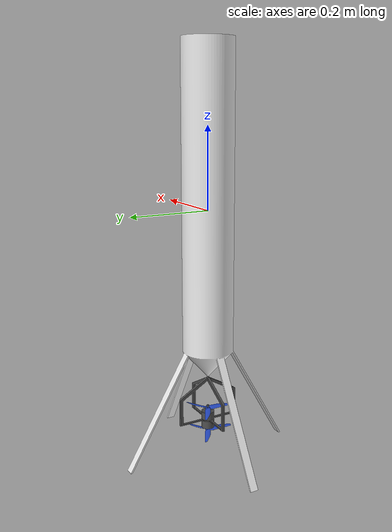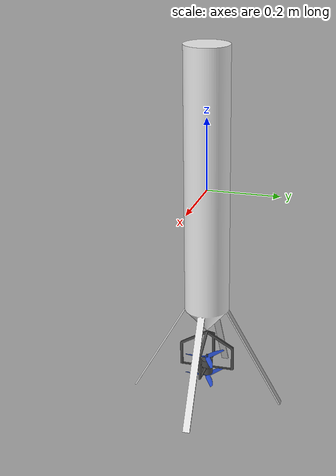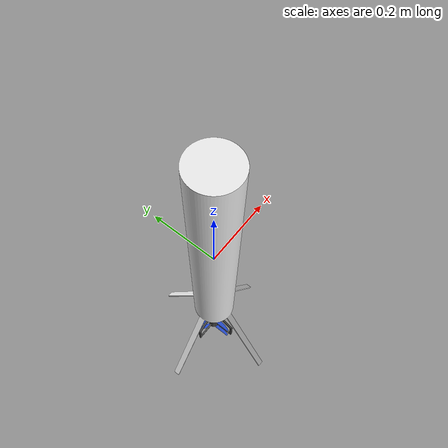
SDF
<?xml version='1.0'?>
<sdf version='1.5'>
  <model name='emborocket'>
    <link name='base_link'>
      <pose frame=''>0 0 0 0 -0 0</pose>
      <inertial>
        <pose frame=''>0 0  0 -0 0</pose>
        <mass>1.0</mass>
        <inertia>
          <ixx>0.1317</ixx>
          <ixy>0</ixy>
          <ixz>0</ixz>
          <iyy>0.1317</iyy>
          <iyz>0</iyz>
          <izz>0.0021</izz>
        </inertia>
      </inertial>
      <visual name='base_link_inertia_visual'>
        <pose frame=''>0 0 -0.6219 0 -0 0</pose>
        <geometry>
          <mesh>
            <uri>model://rotors_description/meshes/rocket_body.stl</uri>
            <scale>0.001 0.001 0.001</scale>
          </mesh>
        </geometry>
        <material>
          <script>
            <name>Gazebo/White</name>
            <uri>file://media/materials/scripts/gazebo.material</uri>
          </script>
        </material>
      </visual>
      <collision name='base_collision'>
        <pose frame=''>0 0 -0.6169 0 -0 0</pose>
        <geometry>
          <box>
            <size>1.32 1.32 0.01</size>
          </box>
        </geometry>
        <surface>
          <contact>
            <ode>
              <max_vel>10</max_vel>
              <min_depth>0.01</min_depth>
            </ode>
          </contact>
        </surface>
      </collision>

      <collision name='tip_collision'>
        <pose frame=''>0 0 0.3931 0 -0 0</pose>
        <geometry>
          <cylinder>
            <radius>0.065</radius>
            <length>0.01</length>
          </cylinder>
        </geometry>
        <surface>
          <contact>
            <ode>
              <max_vel>10</max_vel>
              <min_depth>0.01</min_depth>
            </ode>
          </contact>
        </surface>
      </collision>
      <gravity>1</gravity>
      <velocity_decay/>
      <self_collide>0</self_collide>
    </link>

    <link name='gimbal'>
      <pose frame=''>0 0 -0.42 0 -0 0</pose>
      <inertial>
        <pose frame=''>0 0 -0.1 0 -0 0</pose>
        <mass>0.05</mass>
        <inertia>
          <ixx>0.001</ixx>
          <ixy>0</ixy>
          <ixz>0</ixz>
          <iyy>0.001</iyy>
          <iyz>0</iyz>
          <izz>0.001</izz>
        </inertia>
      </inertial>
      <visual name='gimbal_visual'>
        <pose frame=''>0 0 0 0 -0 0</pose>
        <geometry>
          <mesh>
            <uri>model://rotors_description/meshes/propeller_mount.stl</uri>
            <scale>0.001 0.001 0.001</scale>
          </mesh>
        </geometry>
        <material>
          <script>
            <name>Gazebo/DarkGray</name>
            <uri>file://media/materials/scripts/gazebo.material</uri>
          </script>
        </material>
      </visual>
      <gravity>1</gravity>
      <velocity_decay/>
      <self_collide>0</self_collide>
    </link>

    <link name='zero_link'>
      <pose frame=''>0 0 -0.42 0 -0 0</pose>
      <inertial>
        <pose frame=''>0 0 0 0 -0 0</pose>
        <mass>0.05</mass>
        <inertia>
          <ixx>0.001</ixx>
          <ixy>0</ixy>
          <ixz>0</ixz>
          <iyy>0.001</iyy>
          <iyz>0</iyz>
          <izz>0.001</izz>
        </inertia>
      </inertial>
      <gravity>1</gravity>
      <velocity_decay/>
      <self_collide>0</self_collide>
    </link>

    <joint name='gimbal_y_joint' type='revolute'>
      <child>zero_link</child>
      <parent>base_link</parent>
      <axis>
        <xyz>0 1 0</xyz>
        <limit>
          <lower>-1.571</lower>
          <upper>1.571</upper>
        </limit>
	<dynamics>
          <spring_reference>0</spring_reference>
	  <spring_stiffness>0</spring_stiffness>
        </dynamics>
        <use_parent_model_frame>1</use_parent_model_frame>
      </axis>
    </joint>

    <joint name='gimbal_x_joint' type='revolute'>
      <child>gimbal</child>
      <parent>zero_link</parent>
      <axis>
        <xyz>1 0 0</xyz>
        <limit>
          <lower>-1.571</lower>
          <upper>1.571</upper>
        </limit>
	<dynamics>
          <spring_reference>0</spring_reference>
	  <spring_stiffness>0</spring_stiffness>
        </dynamics>
        <use_parent_model_frame>1</use_parent_model_frame>
      </axis>
    </joint>

    <link name='/imu_link'>
      <pose frame=''>0 0 0 0 -0 0</pose>
      <inertial>
        <pose frame=''>0 0 0 0 -0 0</pose>
        <mass>0.015</mass>
        <inertia>
          <ixx>1e-05</ixx>
          <ixy>0</ixy>
          <ixz>0</ixz>
          <iyy>1e-05</iyy>
          <iyz>0</iyz>
          <izz>1e-05</izz>
        </inertia>
      </inertial>
    </link>

    <joint name='/imu_joint' type='revolute'>
      <child>/imu_link</child>
      <parent>base_link</parent>
      <axis>
        <xyz>1 0 0</xyz>
        <limit>
          <lower>0</lower>
          <upper>0</upper>
          <effort>0</effort>
          <velocity>0</velocity>
        </limit>
        <dynamics>
          <spring_reference>0</spring_reference>
          <spring_stiffness>0</spring_stiffness>
        </dynamics>
        <use_parent_model_frame>1</use_parent_model_frame>
      </axis>
    </joint>

    <link name='thrustpuck'>
      <pose frame=''>0 0 -0.42 0 -0 0</pose>
      <inertial>
        <pose frame=''>0 0 0 0 -0 0</pose>
        <mass>0.015</mass>
        <inertia>
          <ixx>1e-05</ixx>
          <ixy>0</ixy>
          <ixz>0</ixz>
          <iyy>1e-05</iyy>
          <iyz>0</iyz>
          <izz>1e-05</izz>
        </inertia>
      </inertial>
    </link>

    <joint name='thrustpuck_joint' type='revolute'>
      <child>thrustpuck</child>
      <parent>base_link</parent>
      <axis>
        <xyz>1 0 0</xyz>
        <limit>
          <lower>0</lower>
          <upper>0</upper>
          <effort>0</effort>
          <velocity>0</velocity>
        </limit>
        <dynamics>
          <spring_reference>0</spring_reference>
          <spring_stiffness>0</spring_stiffness>
        </dynamics>
        <use_parent_model_frame>1</use_parent_model_frame>
      </axis>
    </joint>

    <link name='rotor_0'>
      <pose frame=''>0 0 -0.5043 0 -0 0</pose>
      <inertial>
        <pose frame=''>0 0 0 0 -0 0</pose>
        <mass>0.0005</mass>
        <inertia>
          <ixx>9.75e-07</ixx>
          <ixy>0</ixy>
          <ixz>0</ixz>
          <iyy>0.000273104</iyy>
          <iyz>0</iyz>
          <izz>0.000274004</izz>
        </inertia>
      </inertial>
      <visual name='rotor_0_visual'>
        <pose frame=''>0 -0.009 0 1.571 -0 0</pose>
        <geometry>
          <mesh>
	    <uri>model://rotors_description/meshes/propeller.stl</uri>
            <scale>0.001 0.001 0.001</scale>
	  </mesh>
        </geometry>
        <material>
          <script>
            <name>Gazebo/Blue</name>
            <uri>file://media/materials/scripts/gazebo.material</uri>
          </script>
        </material>
      </visual>
      <gravity>1</gravity>
      <velocity_decay/>
    </link>

    <joint name='rotor_0_joint' type='revolute'>
      <child>rotor_0</child>
      <parent>gimbal</parent>
      <axis>
        <xyz>0 0 1</xyz>
        <limit>
          <lower>-1e+16</lower>
          <upper>1e+16</upper>
        </limit>
        <dynamics>
          <spring_reference>0</spring_reference>
          <spring_stiffness>0</spring_stiffness>
        </dynamics>
        <use_parent_model_frame>1</use_parent_model_frame>
      </axis>
    </joint>

    <link name='rotor_1'>
      <pose frame=''>0 0 -0.5629 0 -0 0</pose>
      <inertial>
        <pose frame=''>0 0 0 0 -0 0</pose>
        <mass>0.0005</mass>
        <inertia>
          <ixx>9.75e-07</ixx>
          <ixy>0</ixy>
          <ixz>0</ixz>
          <iyy>0.000273104</iyy>
          <iyz>0</iyz>
          <izz>0.000274004</izz>
        </inertia>
      </inertial>
      <visual name='rotor_1_visual'>
        <pose frame=''>0 -0.009 0 1.571 -0 0</pose>
        <geometry>
          <mesh>
	    <uri>model://rotors_description/meshes/propeller.stl</uri>
            <scale>0.001 0.001 0.001</scale>
	  </mesh>
        </geometry>
        <material>
          <script>
            <name>Gazebo/Blue</name>
            <uri>file://media/materials/scripts/gazebo.material</uri>
          </script>
        </material>
      </visual>
      <gravity>1</gravity>
      <velocity_decay/>
    </link>

    <joint name='rotor_1_joint' type='revolute'>
      <child>rotor_1</child>
      <parent>gimbal</parent>
      <axis>
        <xyz>0 0 1</xyz>
        <limit>
          <lower>-1e+16</lower>
          <upper>1e+16</upper>
        </limit>
        <dynamics>
          <spring_reference>0</spring_reference>
          <spring_stiffness>0</spring_stiffness>
        </dynamics>
        <use_parent_model_frame>1</use_parent_model_frame>
      </axis>
    </joint>

    <plugin name='rosbag' filename='libgazebo_multirotor_base_plugin.so'>
      <robotNamespace/>
      <linkName>base_link</linkName>
      <rotorVelocitySlowdownSim>10</rotorVelocitySlowdownSim>
    </plugin>
    <plugin name='top_ccw_motor_model' filename='libgazebo_motor_model.so'>
      <robotNamespace/>
      <jointName>rotor_0_joint</jointName>
      <linkName>rotor_0</linkName>
      <turningDirection>ccw</turningDirection>
      <timeConstantUp>0.0125</timeConstantUp>
      <timeConstantDown>0.025</timeConstantDown>
      <maxRotVelocity>1100</maxRotVelocity>
      <motorConstant>0</motorConstant>
      <momentConstant>0</momentConstant>
      <commandSubTopic>/gazebo/command/motor_speed</commandSubTopic>
      <motorNumber>0</motorNumber>
      <rotorDragCoefficient>0</rotorDragCoefficient>
      <rollingMomentCoefficient>0</rollingMomentCoefficient>
      <motorSpeedPubTopic>/motor_speed/0</motorSpeedPubTopic>
      <rotorVelocitySlowdownSim>10</rotorVelocitySlowdownSim>
    </plugin>
    <plugin name='bottom_cw_motor_model' filename='libgazebo_motor_model.so'>
      <robotNamespace/>
      <jointName>rotor_1_joint</jointName>
      <linkName>rotor_1</linkName>
      <turningDirection>cw</turningDirection>
      <timeConstantUp>0.0125</timeConstantUp>
      <timeConstantDown>0.025</timeConstantDown>
      <maxRotVelocity>1100</maxRotVelocity>
      <motorConstant>0</motorConstant>
      <momentConstant>0</momentConstant>
      <commandSubTopic>/gazebo/command/motor_speed</commandSubTopic>
      <motorNumber>1</motorNumber>
      <rotorDragCoefficient>0</rotorDragCoefficient>
      <rollingMomentCoefficient>0</rollingMomentCoefficient>
      <motorSpeedPubTopic>/motor_speed/1</motorSpeedPubTopic>
      <rotorVelocitySlowdownSim>10</rotorVelocitySlowdownSim>
    </plugin>
    <model name='gps0'>
      <link name='link'>
        <pose frame=''>0 0 0 0 -0 0</pose>
        <inertial>
          <pose frame=''>0 0 0 0 -0 0</pose>
          <mass>0.005</mass>
          <inertia>
            <ixx>2.1733e-06</ixx>
            <ixy>0</ixy>
            <ixz>0</ixz>
            <iyy>2.1733e-06</iyy>
            <iyz>0</iyz>
            <izz>1.8e-07</izz>
          </inertia>
        </inertial>
        <visual name='visual'>
          <geometry>
            <cylinder>
              <radius>0.01</radius>
              <length>0.002</length>
            </cylinder>
          </geometry>
          <material>
            <script>
              <name>Gazebo/Black</name>
              <uri>__default__</uri>
            </script>
          </material>
        </visual>
        <sensor name='gps' type='gps'>
          <pose frame=''>0 0 0 0 -0 0</pose>
          <plugin name='gps_plugin' filename='libgazebo_gps_plugin.so'>
            <robotNamespace/>
            <gpsNoise>1</gpsNoise>
            <gpsXYRandomWalk>2.0</gpsXYRandomWalk>
            <gpsZRandomWalk>4.0</gpsZRandomWalk>
            <gpsXYNoiseDensity>0.0002</gpsXYNoiseDensity>
            <gpsZNoiseDensity>0.0004</gpsZNoiseDensity>
            <gpsVXYNoiseDensity>0.2</gpsVXYNoiseDensity>
            <gpsVZNoiseDensity>0.4</gpsVZNoiseDensity>
          </plugin>
        </sensor>
      </link>
    </model>
    <joint name='gps0_joint' type='revolute'>
      <parent>base_link</parent>
      <child>gps0::link</child>
      <axis>
        <xyz>1 0 0</xyz>
        <limit>
          <lower>0</lower>
          <upper>0</upper>
        </limit>
	<dynamics>
          <spring_reference>0</spring_reference>
	  <spring_stiffness>0</spring_stiffness>
        </dynamics>
        <use_parent_model_frame>1</use_parent_model_frame>
      </axis>
    </joint>
    <plugin name='groundtruth_plugin' filename='libgazebo_groundtruth_plugin.so'>
      <robotNamespace/>
    </plugin>
    <plugin name='magnetometer_plugin' filename='libgazebo_magnetometer_plugin.so'>
      <robotNamespace/>
      <pubRate>100</pubRate>
      <noiseDensity>0.0004</noiseDensity>
      <randomWalk>6.4e-06</randomWalk>
      <biasCorrelationTime>600</biasCorrelationTime>
      <magTopic>/mag</magTopic>
    </plugin>
    <plugin name='barometer_plugin' filename='libgazebo_barometer_plugin.so'>
      <robotNamespace/>
      <pubRate>50</pubRate>
      <baroTopic>/baro</baroTopic>
      <baroDriftPaPerSec>0</baroDriftPaPerSec>
    </plugin>
    <plugin name='mavlink_interface' filename='libgazebo_mavlink_interface.so'>
      <robotNamespace/>
      <imuSubTopic>/imu</imuSubTopic>
      <magSubTopic>/mag</magSubTopic>
      <baroSubTopic>/baro</baroSubTopic>
      <mavlink_addr>INADDR_ANY</mavlink_addr>
      <mavlink_udp_port>14560</mavlink_udp_port>
      <mavlink_tcp_port>4560</mavlink_tcp_port>
      <serialEnabled>0</serialEnabled>
      <serialDevice>/dev/ttyACM0</serialDevice>
      <baudRate>921600</baudRate>
      <qgc_addr>INADDR_ANY</qgc_addr>
      <qgc_udp_port>14550</qgc_udp_port>
      <sdk_addr>INADDR_ANY</sdk_addr>
      <sdk_udp_port>14540</sdk_udp_port>
      <hil_mode>0</hil_mode>
      <hil_state_level>0</hil_state_level>
      <vehicle_is_tailsitter>0</vehicle_is_tailsitter>
      <send_vision_estimation>0</send_vision_estimation>
      <send_odometry>1</send_odometry>
      <enable_lockstep>1</enable_lockstep>
      <use_tcp>1</use_tcp>
      <motorSpeedCommandPubTopic>/gazebo/command/motor_speed</motorSpeedCommandPubTopic>
      <control_channels>
        <channel name='rotor0'>
          <input_index>0</input_index>
          <input_offset>0</input_offset>
          <input_scaling>1000</input_scaling>
          <zero_position_disarmed>0</zero_position_disarmed>
          <zero_position_armed>0</zero_position_armed>
          <joint_control_type>velocity</joint_control_type>
          <joint_name>rotor_0_joint</joint_name>
        </channel>
        <channel name='rotor1'>
          <input_index>1</input_index>
          <input_offset>0</input_offset>
          <input_scaling>1000</input_scaling>
          <zero_position_disarmed>0</zero_position_disarmed>
          <zero_position_armed>0</zero_position_armed>
	  <joint_control_type>velocity</joint_control_type>
	  <joint_name>rotor_1_joint</joint_name>
        </channel>
        <channel name="gimbal_y_tilt">
          <input_index>2</input_index>
          <input_offset>-0.5</input_offset>
          <input_scaling>2</input_scaling>
          <zero_position_disarmed>0</zero_position_disarmed>
          <zero_position_armed>0</zero_position_armed>
          <joint_control_type>position_gimbal_y</joint_control_type>
          <joint_name>gimbal_y_joint</joint_name>
	  <joint_control_pid>
            <p>7</p>
            <i>0</i>
            <d>0.1</d>
            <iMax>1.0</iMax>
            <iMin>-1.0</iMin>
            <cmdMax>7</cmdMax>
            <cmdMin>-7</cmdMin>
          </joint_control_pid>
        </channel>
        <channel name="gimbal_x_tilt">
          <input_index>3</input_index>
          <input_offset>-0.5</input_offset>
          <input_scaling>2</input_scaling>
          <zero_position_disarmed>0</zero_position_disarmed>
          <zero_position_armed>0</zero_position_armed>
          <joint_control_type>position_gimbal_x</joint_control_type>
          <joint_name>gimbal_x_joint</joint_name>
          <joint_control_pid>
            <p>7</p>
            <i>0</i>
            <d>0.1</d>
            <iMax>1.0</iMax>
            <iMin>-1.0</iMin>
            <cmdMax>7</cmdMax>
            <cmdMin>-7</cmdMin>
          </joint_control_pid>
        </channel>
        <channel name='gimbal_forces'>
          <input_index>4</input_index>
          <input_offset>0</input_offset>
          <input_scaling>1000</input_scaling>
          <zero_position_disarmed>0</zero_position_disarmed>
          <zero_position_armed>0</zero_position_armed>
          <joint_control_type>gimbal_control</joint_control_type>
	  <joint_name>thrustpuck_joint</joint_name>
	  <linkName>thrustpuck</linkName>
        </channel>

      </control_channels>
    </plugin>
    <static>0</static>
    <plugin name='rotors_gazebo_imu_plugin' filename='libgazebo_imu_plugin.so'>
      <robotNamespace/>
      <linkName>/imu_link</linkName>
      <imuTopic>/imu</imuTopic>
      <gyroscopeNoiseDensity>0.00018665</gyroscopeNoiseDensity>
      <gyroscopeRandomWalk>3.8785e-05</gyroscopeRandomWalk>
      <gyroscopeBiasCorrelationTime>1000.0</gyroscopeBiasCorrelationTime>
      <gyroscopeTurnOnBiasSigma>0.0087</gyroscopeTurnOnBiasSigma>
      <accelerometerNoiseDensity>0.00186</accelerometerNoiseDensity>
      <accelerometerRandomWalk>0.006</accelerometerRandomWalk>
      <accelerometerBiasCorrelationTime>300.0</accelerometerBiasCorrelationTime>
      <accelerometerTurnOnBiasSigma>0.196</accelerometerTurnOnBiasSigma>
    </plugin>
  </model>
</sdf>
